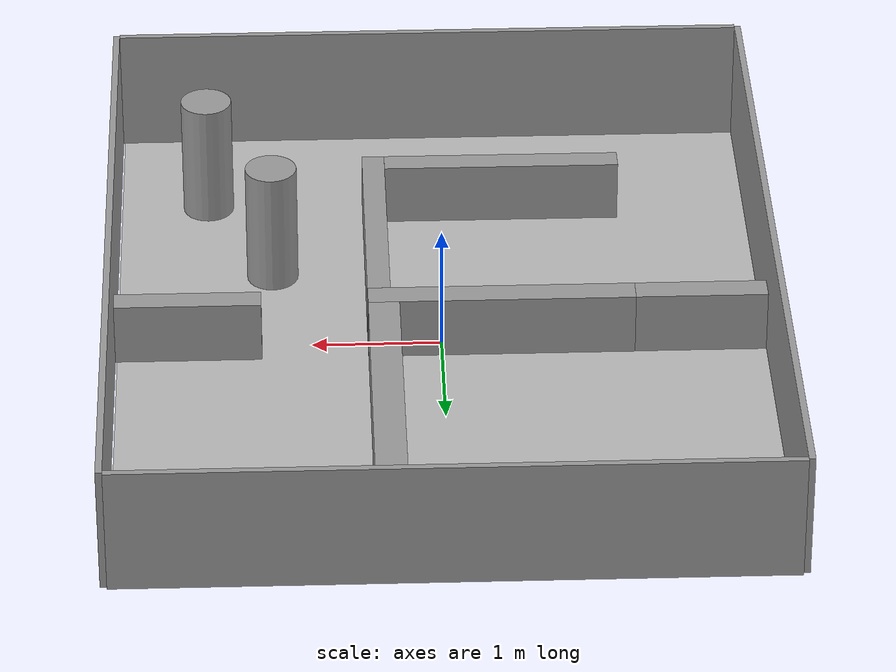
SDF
<sdf version="1.7">
 <world name="indoor_world">
  <light name="sun" type="directional">
   <pose>0 0 10 0 -0 0</pose>
   <diffuse>0.8 0.8 0.8 1</diffuse>
   <specular>0.2 0.2 0.2 1</specular>
   <attenuation>
    <range>1000</range>
    <constant>0.9</constant>
    <linear>0.01</linear>
    <quadratic>0.001</quadratic>
   </attenuation>
   <direction>-0.5 0.1 -0.9</direction>
   <spot><inner_angle>0</inner_angle><outer_angle>0</outer_angle><falloff>0</falloff></spot>
  </light>
  <model name="ground_plane">
   <static>1</static>
   <link name="link">
    <collision name="collision">
     <geometry><plane><normal>0 0 1</normal><size>100 100</size></plane></geometry>
     <surface>
      <contact><collide_bitmask>65535</collide_bitmask></contact>
      <friction><ode><mu>100</mu><mu2>50</mu2></ode></friction>
     </surface>
    </collision>
    <visual name="visual">
     <cast_shadows>0</cast_shadows>
     <geometry><box><size>5 6.225 0.01</size></box></geometry>
     <material>
      <script>
       <uri>/home/dongyanqi/catkin_ws/src/simulator_gazebo/materials/scripts/indoor_region_map.material</uri>
       <name>GroundPlane/Image/indoor</name>
      </script>
     </material>
    </visual>
   </link>
  </model>
  <gravity>0 0 -9.8</gravity>
  <magnetic_field>6e-06 2.3e-05 -4.2e-05</magnetic_field>
  <atmosphere type="adiabatic"/>
  <physics type="ode">
   <max_step_size>0.001</max_step_size>
   <real_time_factor>1</real_time_factor>
   <real_time_update_rate>1000</real_time_update_rate>
  </physics>
  <scene><ambient>0.4 0.4 0.4 1</ambient><background>0.7 0.7 0.7 1</background><shadows>1</shadows></scene>
  <spherical_coordinates>
   <surface_model>EARTH_WGS84</surface_model>
   <latitude_deg>0</latitude_deg>
   <longitude_deg>0</longitude_deg>
   <elevation>0</elevation>
   <heading_deg>0</heading_deg>
  </spherical_coordinates>
  <model name="Box_0">
   <pose>1.94851 0.095538 -2e-06 0 -4e-06 0.000118</pose>
   <link name="Box_0_link">
    <collision name="Box_0_Collision">
     <pose>0 0 0.25 0 -0 0</pose>
     <geometry><box><size>1.12628 0.188435 0.5</size></box></geometry>
    </collision>
    <visual name="Box_0_Visual">
     <pose>0 0 0.25 0 -0 0</pose>
     <geometry><box><size>1.12628 0.188435 0.5</size></box></geometry>
     <material>
      <script><uri>file://media/materials/scripts/gazebo.material</uri><name>Gazebo/Grey</name></script>
      <ambient>1 1 1 1</ambient>
     </material>
     <meta><layer>0</layer></meta>
    </visual>
    <inertial>
     <inertia><ixx>1</ixx><ixy>0</ixy><ixz>0</ixz><iyy>1</iyy><iyz>0</iyz><izz>1</izz></inertia>
     <mass>1</mass>
    </inertial>
   </link>
  </model>
  <model name="Box_1">
   <pose>-1.99175 0.071776 2e-06 2.3e-05 -0 3.3e-05</pose>
   <link name="Box_1_link">
    <collision name="Box_1_Collision">
     <pose>0 0 0.25 0 -0 0</pose>
     <geometry><box><size>1.01369 0.200753 0.5</size></box></geometry>
    </collision>
    <visual name="Box_1_Visual">
     <pose>0 0 0.25 0 -0 0</pose>
     <geometry><box><size>1.01369 0.200753 0.5</size></box></geometry>
     <material>
      <script><uri>file://media/materials/scripts/gazebo.material</uri><name>Gazebo/Grey</name></script>
      <ambient>1 1 1 1</ambient>
     </material>
     <meta><layer>0</layer></meta>
    </visual>
    <inertial>
     <inertia><ixx>1</ixx><ixy>0</ixy><ixz>0</ixz><iyy>1</iyy><iyz>0</iyz><izz>1</izz></inertia>
     <mass>1</mass>
    </inertial>
   </link>
  </model>
  <model name="Box_2">
   <pose>-0.539069 -1.8779 -6e-06 0 -4e-06 -0.000711</pose>
   <link name="Box_2_link">
    <collision name="Box_2_Collision">
     <pose>0 0 0.25 0 -0 0</pose>
     <geometry><box><size>1.86449 0.189397 0.5</size></box></geometry>
    </collision>
    <visual name="Box_2_Visual">
     <pose>0 0 0.25 0 -0 0</pose>
     <geometry><box><size>1.86449 0.189397 0.5</size></box></geometry>
     <material>
      <script><uri>file://media/materials/scripts/gazebo.material</uri><name>Gazebo/Grey</name></script>
      <ambient>1 1 1 1</ambient>
     </material>
     <meta><layer>0</layer></meta>
    </visual>
    <inertial>
     <inertia><ixx>1</ixx><ixy>0</ixy><ixz>0</ixz><iyy>1</iyy><iyz>0</iyz><izz>1</izz></inertia>
     <mass>1</mass>
    </inertial>
   </link>
  </model>
  <model name="Box_3">
   <pose>0.446811 1.29185 -3e-06 3e-06 -0 0.000133</pose>
   <link name="Box_3_link">
    <collision name="Box_3_Collision">
     <pose>0 0 0.25 0 -0 0</pose>
     <geometry><box><size>0.240174 2.23147 0.5</size></box></geometry>
    </collision>
    <visual name="Box_3_Visual">
     <pose>0 0 0.25 0 -0 0</pose>
     <geometry><box><size>0.240174 2.23147 0.5</size></box></geometry>
     <material>
      <script><uri>file://media/materials/scripts/gazebo.material</uri><name>Gazebo/Grey</name></script>
      <ambient>1 1 1 1</ambient>
     </material>
     <meta><layer>0</layer></meta>
    </visual>
    <inertial>
     <inertia><ixx>1</ixx><ixy>0</ixy><ixz>0</ixz><iyy>1</iyy><iyz>0</iyz><izz>1</izz></inertia>
     <mass>1</mass>
    </inertial>
   </link>
  </model>
  <model name="Box_4">
   <pose>0.481449 -0.998419 0 0 -5e-06 0.000591</pose>
   <link name="Box_4_link">
    <collision name="Box_4_Collision">
     <pose>0 0 0.25 0 -0 0</pose>
     <geometry><box><size>0.177299 1.9447 0.5</size></box></geometry>
    </collision>
    <visual name="Box_4_Visual">
     <pose>0 0 0.25 0 -0 0</pose>
     <geometry><box><size>0.177299 1.9447 0.5</size></box></geometry>
     <material>
      <script><uri>file://media/materials/scripts/gazebo.material</uri><name>Gazebo/Grey</name></script>
      <ambient>1 1 1 1</ambient>
     </material>
     <meta><layer>0</layer></meta>
    </visual>
    <inertial>
     <inertia><ixx>1</ixx><ixy>0</ixy><ixz>0</ixz><iyy>1</iyy><iyz>0</iyz><izz>1</izz></inertia>
     <mass>1</mass>
    </inertial>
   </link>
  </model>
  <model name="Box_5">
   <pose>-0.458748 0.074424 -0 0 -0 0.000616</pose>
   <link name="Box_5_link">
    <collision name="Box_5_Collision">
     <pose>0 0 0.25 0 -0 0</pose>
     <geometry><box><size>2.05218 0.202106 0.5</size></box></geometry>
    </collision>
    <visual name="Box_5_Visual">
     <pose>0 0 0.25 0 -0 0</pose>
     <geometry><box><size>2.05218 0.202106 0.5</size></box></geometry>
     <material>
      <script><uri>file://media/materials/scripts/gazebo.material</uri><name>Gazebo/Grey</name></script>
      <ambient>1 1 1 1</ambient>
     </material>
     <meta><layer>0</layer></meta>
    </visual>
    <inertial>
     <inertia><ixx>1</ixx><ixy>0</ixy><ixz>0</ixz><iyy>1</iyy><iyz>0</iyz><izz>1</izz></inertia>
     <mass>1</mass>
    </inertial>
   </link>
  </model>
  <model name="Boundary_0">
   <pose>0.005789 -3.10742 1e-06 3e-05 -0 2e-06</pose>
   <link name="Boundary_0_link">
    <collision name="Boundary_0_Collision">
     <pose>0 0 0.5 0 -0 0</pose>
     <geometry><box><size>5.01158 0.05 1</size></box></geometry>
    </collision>
    <visual name="Boundary_0_Visual">
     <pose>0 0 0.5 0 -0 0</pose>
     <geometry><box><size>5.01158 0.05 1</size></box></geometry>
     <material>
      <script><uri>file://media/materials/scripts/gazebo.material</uri><name>Gazebo/Grey</name></script>
      <ambient>1 1 1 1</ambient>
     </material>
     <meta><layer>0</layer></meta>
    </visual>
    <inertial>
     <inertia><ixx>1</ixx><ixy>0</ixy><ixz>0</ixz><iyy>1</iyy><iyz>0</iyz><izz>1</izz></inertia>
     <mass>1</mass>
    </inertial>
   </link>
  </model>
  <model name="Boundary_1">
   <pose>2.53678 -0.000428 2e-06 0 8.5e-05 -2.4e-05</pose>
   <link name="Boundary_1_link">
    <collision name="Boundary_1_Collision">
     <pose>0 0 0.5 0 -0 0</pose>
     <geometry><box><size>0.05 6.21387 1</size></box></geometry>
    </collision>
    <visual name="Boundary_1_Visual">
     <pose>0 0 0.5 0 -0 0</pose>
     <geometry><box><size>0.05 6.21387 1</size></box></geometry>
     <material>
      <script><uri>file://media/materials/scripts/gazebo.material</uri><name>Gazebo/Grey</name></script>
      <ambient>1 1 1 1</ambient>
     </material>
     <meta><layer>0</layer></meta>
    </visual>
    <inertial>
     <inertia><ixx>1</ixx><ixy>0</ixy><ixz>0</ixz><iyy>1</iyy><iyz>0</iyz><izz>1</izz></inertia>
     <mass>1</mass>
    </inertial>
   </link>
  </model>
  <model name="Boundary_2">
   <pose>0.005941 3.10658 1e-06 2.6e-05 -0 -4e-06</pose>
   <link name="Boundary_2_link">
    <collision name="Boundary_2_Collision">
     <pose>0 0 0.5 0 -0 0</pose>
     <geometry><box><size>5.01158 0.05 1</size></box></geometry>
    </collision>
    <visual name="Boundary_2_Visual">
     <pose>0 0 0.5 0 -0 0</pose>
     <geometry><box><size>5.01158 0.05 1</size></box></geometry>
     <material>
      <script><uri>file://media/materials/scripts/gazebo.material</uri><name>Gazebo/Grey</name></script>
      <ambient>1 1 1 1</ambient>
     </material>
     <meta><layer>0</layer></meta>
    </visual>
    <inertial>
     <inertia><ixx>1</ixx><ixy>0</ixy><ixz>0</ixz><iyy>1</iyy><iyz>0</iyz><izz>1</izz></inertia>
     <mass>1</mass>
    </inertial>
   </link>
  </model>
  <model name="Boundary_3">
   <pose>-2.52507 -0.000422 1e-06 0 3.4e-05 -2.4e-05</pose>
   <link name="Boundary_3_link">
    <collision name="Boundary_3_Collision">
     <pose>0 0 0.5 0 -0 0</pose>
     <geometry><box><size>0.05 6.21387 1</size></box></geometry>
    </collision>
    <visual name="Boundary_3_Visual">
     <pose>0 0 0.5 0 -0 0</pose>
     <geometry><box><size>0.05 6.21387 1</size></box></geometry>
     <material>
      <script><uri>file://media/materials/scripts/gazebo.material</uri><name>Gazebo/Grey</name></script>
      <ambient>1 1 1 1</ambient>
     </material>
     <meta><layer>0</layer></meta>
    </visual>
    <inertial>
     <inertia><ixx>1</ixx><ixy>0</ixy><ixz>0</ixz><iyy>1</iyy><iyz>0</iyz><izz>1</izz></inertia>
     <mass>1</mass>
    </inertial>
   </link>
  </model>
  <model name="unit_cylinder">
   <link name="link">
    <inertial>
     <mass>1</mass>
     <inertia><ixx>0.145833</ixx><ixy>0</ixy><ixz>0</ixz><iyy>0.145833</iyy><iyz>0</iyz><izz>0.125</izz></inertia>
     <pose>0 0 0.5 0 -0 0</pose>
    </inertial>
    <visual name="visual">
     <geometry><cylinder><radius>0.2</radius><length>1</length></cylinder></geometry>
     <material>
      <script><name>Gazebo/Grey</name><uri>file://media/materials/scripts/gazebo.material</uri></script>
      <shader type="pixel"><normal_map>__default__</normal_map></shader>
      <ambient>0.3 0.3 0.3 1</ambient>
      <diffuse>0.7 0.7 0.7 1</diffuse>
      <specular>0.01 0.01 0.01 1</specular>
      <emissive>0 0 0 1</emissive>
     </material>
    </visual>
    <collision name="collision">
     <geometry><cylinder><radius>0.2</radius><length>1</length></cylinder></geometry>
     <surface>
      <friction>
       <ode><mu>1</mu><mu2>1</mu2><fdir1>0 0 0</fdir1><slip1>0</slip1><slip2>0</slip2></ode>
       <torsional>
        <coefficient>1</coefficient>
        <patch_radius>0</patch_radius>
        <surface_radius>0</surface_radius>
        <use_patch_radius>1</use_patch_radius>
        <ode><slip>0</slip></ode>
       </torsional>
      </friction>
      <bounce><restitution_coefficient>0</restitution_coefficient><threshold>1e+06</threshold></bounce>
      <contact>
       <collide_without_contact>0</collide_without_contact>
       <collide_without_contact_bitmask>1</collide_without_contact_bitmask>
       <collide_bitmask>1</collide_bitmask>
       <ode>
        <soft_cfm>0</soft_cfm>
        <soft_erp>0.2</soft_erp>
        <kp>1e+13</kp>
        <kd>1</kd>
        <max_vel>0.01</max_vel>
        <min_depth>0</min_depth>
       </ode>
       <bullet>
        <split_impulse>1</split_impulse>
        <split_impulse_penetration_threshold>-0.01</split_impulse_penetration_threshold>
        <soft_cfm>0</soft_cfm>
        <soft_erp>0.2</soft_erp>
        <kp>1e+13</kp>
        <kd>1</kd>
       </bullet>
      </contact>
     </surface>
    </collision>
   </link>
   <static>0</static>
   <pose>1.29645 -0.99426 0.5 0 0 -0.001014</pose>
  </model>
  <model name="unit_cylinder_0">
   <link name="link">
    <inertial>
     <mass>1</mass>
     <inertia><ixx>0.145833</ixx><ixy>0</ixy><ixz>0</ixz><iyy>0.145833</iyy><iyz>0</iyz><izz>0.125</izz></inertia>
     <pose>0 0 0.5 0 -0 0</pose>
    </inertial>
    <visual name="visual">
     <geometry><cylinder><radius>0.2</radius><length>1</length></cylinder></geometry>
     <material>
      <script><name>Gazebo/Grey</name><uri>file://media/materials/scripts/gazebo.material</uri></script>
      <shader type="pixel"><normal_map>__default__</normal_map></shader>
      <ambient>0.3 0.3 0.3 1</ambient>
      <diffuse>0.7 0.7 0.7 1</diffuse>
      <specular>0.01 0.01 0.01 1</specular>
      <emissive>0 0 0 1</emissive>
     </material>
    </visual>
    <collision name="collision">
     <geometry><cylinder><radius>0.2</radius><length>1</length></cylinder></geometry>
     <surface>
      <friction>
       <ode><mu>1</mu><mu2>1</mu2><fdir1>0 0 0</fdir1><slip1>0</slip1><slip2>0</slip2></ode>
       <torsional>
        <coefficient>1</coefficient>
        <patch_radius>0</patch_radius>
        <surface_radius>0</surface_radius>
        <use_patch_radius>1</use_patch_radius>
        <ode><slip>0</slip></ode>
       </torsional>
      </friction>
      <bounce><restitution_coefficient>0</restitution_coefficient><threshold>1e+06</threshold></bounce>
      <contact>
       <collide_without_contact>0</collide_without_contact>
       <collide_without_contact_bitmask>1</collide_without_contact_bitmask>
       <collide_bitmask>1</collide_bitmask>
       <ode>
        <soft_cfm>0</soft_cfm>
        <soft_erp>0.2</soft_erp>
        <kp>1e+13</kp>
        <kd>1</kd>
        <max_vel>0.01</max_vel>
        <min_depth>0</min_depth>
       </ode>
       <bullet>
        <split_impulse>1</split_impulse>
        <split_impulse_penetration_threshold>-0.01</split_impulse_penetration_threshold>
        <soft_cfm>0</soft_cfm>
        <soft_erp>0.2</soft_erp>
        <kp>1e+13</kp>
        <kd>1</kd>
       </bullet>
      </contact>
     </surface>
    </collision>
   </link>
   <static>0</static>
   <pose>1.8053 -2.03803 0.499994 -0 -0 -9.9e-05</pose>
  </model>
 </world>
</sdf>
